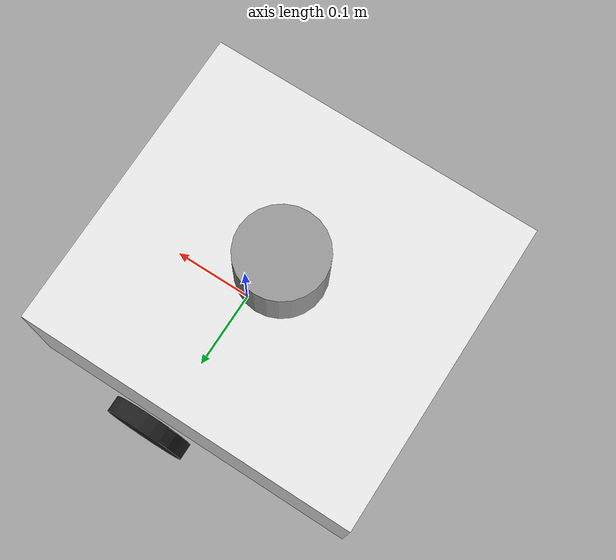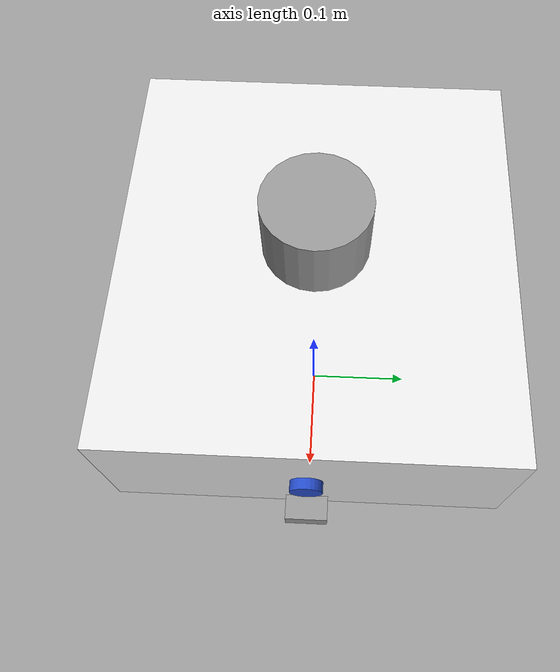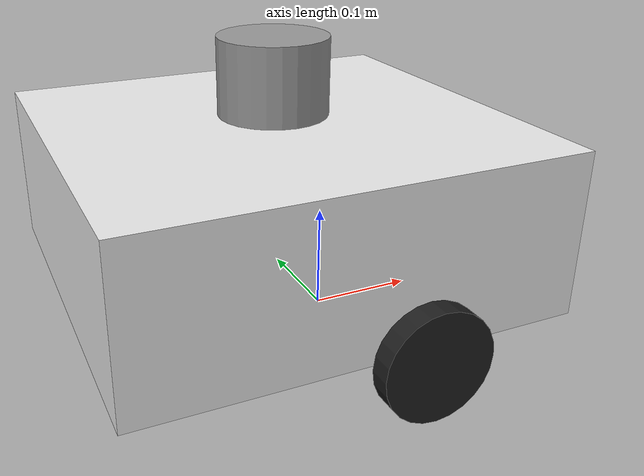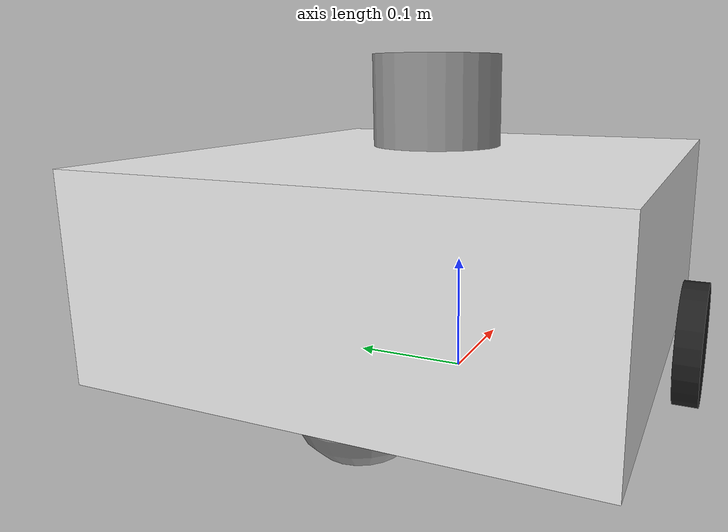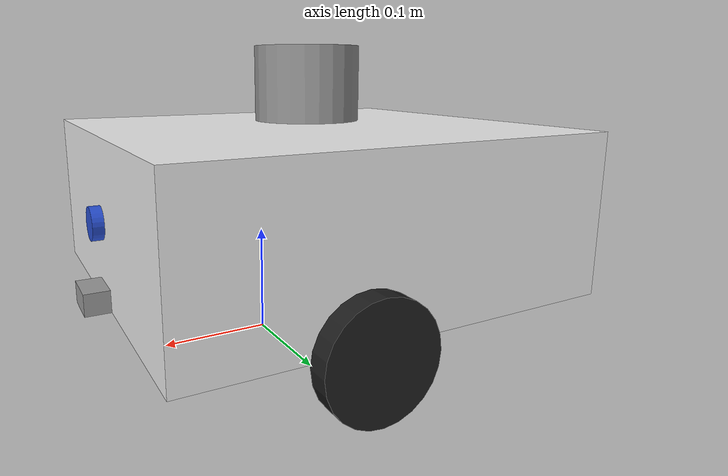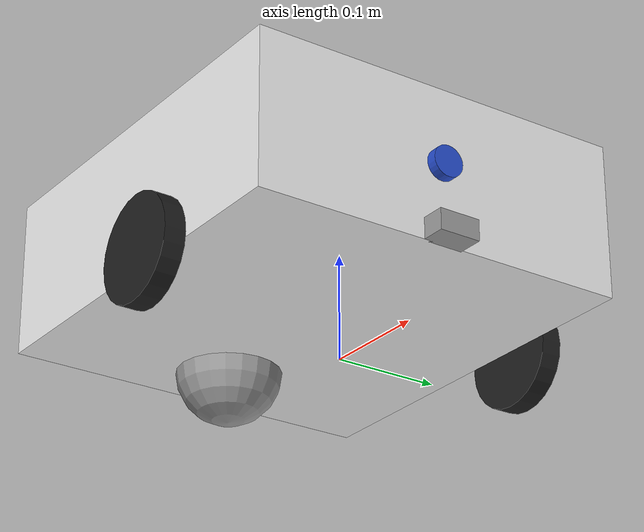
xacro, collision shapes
<?xml version="1.0"?>
<robot xmlns:xacro="http://www.ros.org/wiki/xacro"  name="mobo_bot">

    <xacro:include filename="$(find mobo_bot_description)/urdf/color_macros.xacro"/>
    <xacro:include filename="$(find mobo_bot_description)/urdf/part_macros.xacro"/>
    <xacro:include filename="$(find mobo_bot_description)/urdf/inertia_macros.xacro"/>

    <xacro:property name="chassis_height" value="0.15"/>

    <xacro:arg name="laser_visual" default="false"/>
    <xacro:arg name="imu_visual"   default="true"/>
    <xacro:arg name="sonar_visual"   default="false"/>
    <xacro:arg name="cam_visual"   default="false"/>

     <!-- GAZEBO WHEEL PARAMETERS -->
    <xacro:macro name="gazebo_wheel_settings" params="name">
        <gazebo reference="${name}">
            <mu1>1.0</mu1>
            <mu2>1.0</mu2>
            <minDepth>0.01</minDepth>
            <material>Gazebo/FlatBlack</material>
        </gazebo>
    </xacro:macro>

    <!-- BASE LINK -->

    <link name="base_footprint">
    </link>

    <!-- CHASSIS LINK -->

    <joint name="chassis_joint" type="fixed">
        <parent link="base_footprint"/>
        <child link="chassis_link"/>
        <origin xyz="0 0 0.05"/>
    </joint>

    <link name="chassis_link">
        <xacro:box_with_fillet x="-0.05" y="0" z="${chassis_height/2}" size_x="0.4" size_y="0.37" size_z="${chassis_height}" fillet_radius="0.1" material="white"/>
        <collision>
           <origin xyz="-0.05 0 ${chassis_height/2}" rpy="0 0 0"/>
            <geometry>
                <box size="0.4 0.37 ${chassis_height}"/>
            </geometry>
        </collision>
        <xacro:inertial_box mass="5.0" x="0.4" y="0.37" z="${chassis_height}">
            <origin xyz="-0.05 0 ${chassis_height/2}" rpy="0 0 0"/>
        </xacro:inertial_box>
    </link>
    <gazebo reference="chassis_link">
        <material>Gazebo/White</material>
    </gazebo>

    <!--  FRONT LEFT WHEEL LINK -->

    <joint name="left_wheel_joint" type="continuous">
        <parent link="base_footprint"/>
        <child link="left_wheel_link"/>
        <origin xyz="0 0.2 0.05" rpy="${-pi/2} 0 0"/>
        <axis xyz="0 0 1"/>
    </joint>

     <link name="left_wheel_link">
        <xacro:insert_mesh_drive_wheel/>
    </link>

    <xacro:gazebo_wheel_settings name="left_wheel_link"/>

    <!--  FRONT RIGHT WHEEL LINK -->

    <joint name="right_wheel_joint" type="continuous">
        <parent link="base_footprint"/>
        <child link="right_wheel_link"/>
        <origin xyz="0 -0.2 0.05" rpy="${-pi/2} 0 0"/>
        <axis xyz="0 0 1"/>
    </joint>

     <link name="right_wheel_link">
        <xacro:insert_mesh_drive_wheel/>
    </link>

    <xacro:gazebo_wheel_settings name="right_wheel_link"/>

    <!--  CASTER WHEEL LINK -->

    <joint name="caster_wheel_joint" type="fixed">
        <parent link="chassis_link"/>
        <child link="caster_wheel_link"/>
        <origin xyz="-0.18 0 0"/>
    </joint>

    <link name="caster_wheel_link">
        <visual>
            <origin xyz="0 0 0" rpy="0 0 0"/>
            <geometry>
                <sphere radius="0.05" />
            </geometry>
            <material name="grey"/>
        </visual>
        <collision>
           <origin xyz="0 0 0" rpy="0 0 0"/>
            <geometry>
                <sphere radius="0.05" />
            </geometry>
        </collision>
        <xacro:inertial_sphere mass="0.5" radius="0.05">
            <origin xyz="0 0 0" rpy="0 0 0"/>
        </xacro:inertial_sphere>
    </link>

    <gazebo reference="caster_wheel_link">
        <mu1>0.001</mu1>
        <mu2>0.001</mu2>
        <minDepth>0.01</minDepth>
        <material>Gazebo/Grey</material>
    </gazebo>

    <xacro:include filename="$(find mobo_bot_description)/urdf/gazebo_controllers.xacro"/>

    <xacro:include filename="$(find mobo_bot_description)/urdf/sensors/lidar.xacro"/>
    <xacro:include filename="$(find mobo_bot_description)/urdf/sensors/cam.xacro"/>
    <xacro:include filename="$(find mobo_bot_description)/urdf/sensors/sonar.xacro"/>

</robot>

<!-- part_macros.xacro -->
<robot name="mobo_bot" xmlns:xacro="http://www.ros.org/wiki/xacro" >

    <xacro:macro name="box_with_fillet" params="x y z size_x size_y size_z fillet_radius material">
            <!-- logitudinal box -->
            <visual>
                <origin xyz="${x} ${y} ${z}" rpy="0 0 0"/>
                <geometry>
                    <box size="${size_x} ${size_y-(2*fillet_radius)} ${size_z}"/>
                </geometry>
                <material name="${material}"/>
            </visual>
            <!-- lateral box -->
            <visual>
                <origin xyz="${x} ${y} ${z}" rpy="0 0 0"/>
                <geometry>
                    <box size="${size_x-(2*fillet_radius)} ${size_y} ${size_z}"/>
                </geometry>
                <material name="${material}"/>
            </visual>
            <!-- cylinder1 -->
            <visual>
                <origin xyz="${x+((size_x/2)-fillet_radius)} ${y+((size_y/2)-fillet_radius)} ${z}" rpy="0 0 0"/>
                <geometry>
                    <cylinder length="${size_z}" radius="${fillet_radius}"/>
                </geometry>
                <material name="${material}"/>
            </visual>
            <!-- cylinder2 -->
            <visual>
                <origin xyz="${x+((size_x/2)-fillet_radius)} ${y-((size_y/2)-fillet_radius)} ${z}" rpy="0 0 0"/>
                <geometry>
                    <cylinder length="${size_z}" radius="${fillet_radius}"/>
                </geometry>
                <material name="${material}"/>
            </visual>
            <!-- cylinder3 -->
            <visual>
                <origin xyz="${x-((size_x/2)-fillet_radius)} ${y+((size_y/2)-fillet_radius)} ${z}" rpy="0 0 0"/>
                <geometry>
                    <cylinder length="${size_z}" radius="${fillet_radius}"/>
                </geometry>
                <material name="${material}"/>
            </visual>
            <!-- cylinder4 -->
            <visual>
                <origin xyz="${x-((size_x/2)-fillet_radius)} ${y-((size_y/2)-fillet_radius)} ${z}" rpy="0 0 0"/>
                <geometry>
                    <cylinder length="${size_z}" radius="${fillet_radius}"/>
                </geometry>
                <material name="${material}"/>
            </visual>
    </xacro:macro>

    <xacro:property name="wheel_radius" value="0.05"/>
    <xacro:property name="wheel_width" value="0.02"/>
    <xacro:property name="wheel_mass" value="0.4"/>
    <xacro:property name="wheel_color" value="black"/>
    <xacro:property name="rim_color" value="red"/>

    <xacro:macro name="insert_drive_wheel">
        <visual>
            <origin xyz="0 0 0" rpy="0 0 0"/>
            <geometry>
                <cylinder radius="${wheel_radius}" length="${wheel_width}"/>
            </geometry>
            <material name="${wheel_color}"/>
        </visual>
        <collision>
           <origin xyz="0 0 0" rpy="0 0 0"/>
            <geometry>
                <cylinder radius="${wheel_radius}" length="${wheel_width}"/>
            </geometry>
        </collision>
        <xacro:inertial_cylinder mass="${wheel_mass}" length="${wheel_width}" radius="${wheel_radius}">
            <origin xyz="0 0 0" rpy="0 0 0"/>
        </xacro:inertial_cylinder>
    </xacro:macro>

    <xacro:macro name="insert_wheel_rim">
        <visual>
            <origin xyz="0 0 0" rpy="0 0 0"/>
            <geometry>
                <box size="0.01 ${wheel_radius*1.2} ${wheel_width+0.005}"/>
            </geometry>
            <material name="${rim_color}"/>
        </visual>
        <visual>
            <origin xyz="0 0 0" rpy="0 0 ${pi/2}"/>
            <geometry>
                <box size="0.01 ${wheel_radius*1.2} ${wheel_width+0.005}"/>
            </geometry>
            <material name="${rim_color}"/>
        </visual>
        <visual>
            <origin xyz="0 0 0" rpy="0 0 ${-pi/4}"/>
            <geometry>
                <box size="0.01 ${wheel_radius*1.2} ${wheel_width+0.005}"/>
            </geometry>
            <material name="${rim_color}"/>
        </visual>
        <visual>
            <origin xyz="0 0 0" rpy="0 0 ${pi/4}"/>
            <geometry>
                <box size="0.01 ${wheel_radius*1.2} ${wheel_width+0.005}"/>
            </geometry>
            <material name="${rim_color}"/>
        </visual>
    </xacro:macro>

     <xacro:macro name="insert_mesh_drive_wheel">
        <visual>
            <origin xyz="0 0 0" rpy="0 0 0"/>
            <geometry>
                <mesh filename="$(find mobo_bot_description)/meshes/wheel.stl"/>
            </geometry>
            <material name="black"/>
        </visual>
        <collision>
            <origin xyz="0 0 0" rpy="0 0 0"/>
            <geometry>
                <cylinder radius="0.05" length="0.02"/>
            </geometry>
        </collision>

        <xacro:inertial_cylinder mass="0.4" length="0.02" radius="0.05">
            <origin xyz="0 0 0" rpy="0 0 0"/>
        </xacro:inertial_cylinder>
    </xacro:macro>

</robot>

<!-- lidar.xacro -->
<robot xmlns:xacro="http://www.ros.org/wiki/xacro"  name="mobo_bot">

    <!-- LIDAR LINK FRAME -->

    <joint name="lidar_joint" type="fixed">
        <parent link="base_footprint"/>
        <child link="lidar_link"/>
        <origin xyz="-0.05 0 ${chassis_height + 0.11}" rpy="0 0 0"/>
        <axis xyz="0 0 0"/>
    </joint>

    <link name="lidar_link">
    <visual>
      <origin xyz="0 0 -0.02" rpy="0 0 0"/>
      <geometry>
        <cylinder radius="0.05" length="0.07" />
      </geometry>
      <material name="grey"/>
    </visual>

    <collision>
      <origin xyz="0 0 -0.02" rpy="0 0 0"/>
      <geometry>
        <cylinder radius="0.05" length="0.07" />
      </geometry>
    </collision>

    <xacro:inertial_cylinder mass="0.2" length="0.07" radius="0.05">
            <origin xyz="0 0 -0.02" rpy="0 0 0"/>
        </xacro:inertial_cylinder>
    </link>

    <gazebo reference="lidar_link">
        <material>Gazebo/DarkGrey</material>
        <sensor name="lidar" type="ray">
            <always_on>true</always_on>
            <visualize>$(arg laser_visual)</visualize>
            <pose>0.0 0 0.0 0 0 0</pose>
            <update_rate>10</update_rate>
            <ray>
                <scan>
                <horizontal>
                    <samples>360</samples>
                    <resolution>1</resolution>
                    <min_angle>${0*pi}</min_angle>
                    <max_angle>${2*pi}</max_angle>
                </horizontal>
                </scan>
                <range>
                    <min>0.2</min>
                    <max>4</max>
                    <resolution>0.02</resolution>
                </range>
                <noise>
                    <type>gaussian</type>
                    <mean>0.0</mean>
                    <stddev>0.01</stddev>
                </noise>
            </ray>
            <plugin name="laser_plugin" filename="libgazebo_ros_ray_sensor.so">
            <ros>
                <remapping>~/out:=scan</remapping>
            </ros>
            <output_type>sensor_msgs/LaserScan</output_type>
            <frame_name>lidar_link</frame_name>
            </plugin>
        </sensor>
    </gazebo>

</robot>

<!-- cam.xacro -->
<robot xmlns:xacro="http://www.ros.org/wiki/xacro"  name="mobo_bot">

    <xacro:property name="line_sense_angle"   value="${pi/2}"/>

    <xacro:property name="line_sense_mode"   value="true"/>

    <!-- CAMERA LINK FRAME -->

    <joint name="cam_joint" type="fixed">
        <parent link="chassis_link"/>
        <child link="cam_link"/>
        <xacro:if value="${line_sense_mode}">
            <origin xyz="0.16 0 0" rpy="0 ${line_sense_angle} 0"/>
        </xacro:if>
        <xacro:unless value="${line_sense_mode}">
            <origin xyz="0.16 0 ${chassis_height+0.01}" rpy="0 ${pi/4} 0"/>
        </xacro:unless>
    </joint>

    <link name="cam_link">
        <visual>
            <origin xyz="-0.005 0 0" rpy="0 ${pi/2} 0"/>
            <geometry>
                <cylinder radius="0.01" length="0.01"/>
            </geometry>
            <material name="grey"/>
        </visual>
        <visual>
            <origin xyz="-0.015 0 0" rpy="0 0 0"/>
            <geometry>
                <box size="0.01 0.04 0.025" />
            </geometry>
            <material name="grey"/>
        </visual>
        <collision>
            <origin xyz="-0.01 0 0" rpy="0 0 0"/>
            <geometry>
                <box size="0.02 0.04 0.025"/>
            </geometry>
        </collision>
        <xacro:inertial_box mass="0.0005" x="0.02" y="0.04" z="0.025">
            <origin xyz="-0.01 0 0" rpy="0 0 0"/>
        </xacro:inertial_box>

    </link>

    <joint name="cam_optical_joint" type="fixed">
        <parent link="cam_link"/>
        <child link="cam_optical_link"/>
        <origin xyz="0 0 0" rpy="${-pi/2} 0 ${-pi/2}"/>
    </joint>

    <link name="cam_optical_link"/>

    <gazebo reference="cam_link">
        <material>Gazebo/DarkGrey</material>

        <sensor type="camera" name="camera">
            <visualize>$(arg cam_visual)</visualize>
            <update_rate>50.0</update_rate>
            <camera name="cam">
                <horizontal_fov>1.4</horizontal_fov>
                <image>
                    <width>160</width>
                    <height>120</height>
                    <format>R8G8B8</format>
                </image>
                <clip>
                    <near>0.02</near>
                    <far>5</far>
                </clip>
                <noise>
                    <type>gaussian</type>
                    <mean>0.0</mean>
                    <stddev>0.007</stddev>
                </noise>
            </camera>
            <plugin name="rgb_cam_plugin" filename="libgazebo_ros_camera.so">
                <!-- Set camera name. If empty, defaults to sensor name (i.e. "sensor_name") -->
                <camera_name>cam</camera_name>
                <!-- Set TF frame name. If empty, defaults to link name (i.e. "link_name") -->
                <frame_name>cam_optical_link</frame_name>
                <hack_baseline>0.2</hack_baseline>
            </plugin>
        </sensor>
    </gazebo>

</robot>

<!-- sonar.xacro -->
<robot xmlns:xacro="http://www.ros.org/wiki/xacro"  name="mobo_bot">

    <xacro:property name="deg2rad" value="0.017460317"/>
    <xacro:property name="scan_angle" value="1"/>

  <!-- SONAR LINK FRAME -->

    <joint name="sonar_joint" type="fixed">
        <parent link="chassis_link"/>
        <child link="sonar_link"/>
        <origin xyz="0.16 0 ${chassis_height/2}" rpy="0 0 0"/>
        <axis xyz="0 0 0"/>
    </joint>

    <link name="sonar_link">
        <visual>
            <origin xyz="-0.005 0 0" rpy="0 ${pi/2} 0"/>
            <geometry>
                <cylinder radius="0.015" length="0.01" />
            </geometry>
            <material name="blue"/>
        </visual>

        <collision>
            <origin xyz="-0.005 0 0" rpy="0 ${pi/2} 0"/>
            <geometry>
                <cylinder radius="0.015" length="0.01" />
            </geometry>
        </collision>

        <xacro:inertial_cylinder mass="0.0005" length="0.01" radius="0.01">
            <origin xyz="-0.005 0 0" rpy="0 0 0"/>
        </xacro:inertial_cylinder>
    </link>

    <gazebo reference="sonar_link">
        <material>Gazebo/Blue</material>

        <sensor name="sonar" type="ray">
            <always_on>true</always_on>
            <visualize>$(arg sonar_visual)</visualize>
            <pose>0.0 0 0.0 0 0 0</pose>
            <update_rate>5</update_rate>
            <ray>
                <scan>
                    <horizontal>
                    <samples>20</samples>
                    <resolution>1</resolution>
                    <min_angle>${-scan_angle * deg2rad}</min_angle>
                    <max_angle>${scan_angle * deg2rad}</max_angle>
                    </horizontal>
                    <vertical>
                    <samples>20</samples>
                    <resolution>1</resolution>
                    <min_angle>${-scan_angle * deg2rad}</min_angle>
                    <max_angle>${scan_angle * deg2rad}</max_angle>
                    </vertical>
                </scan>
                <range>
                    <min>0.01</min>
                    <max>2</max>
                    <resolution>0.02</resolution>
                </range>
            </ray>

            <plugin name="sonar_plugin" filename="libgazebo_ros_ray_sensor.so">
                <ros>
                    <namespace>sonar</namespace>
                    <remapping>~/out:=range</remapping>
                </ros>
                <output_type>sensor_msgs/Range</output_type>
                <radiation_type>ultrasound</radiation_type>
                <frame_name>sonar_link</frame_name>
            </plugin>
        </sensor>
    </gazebo>

</robot>
